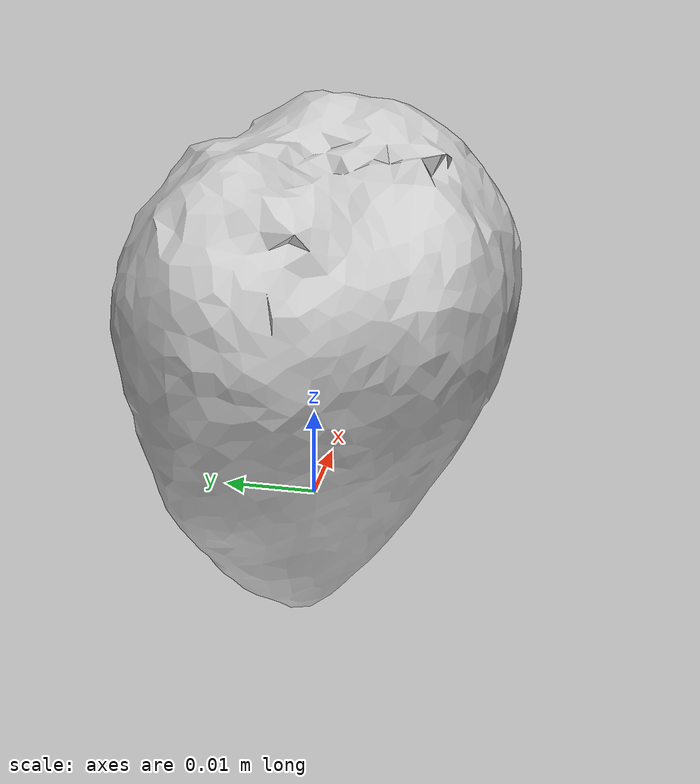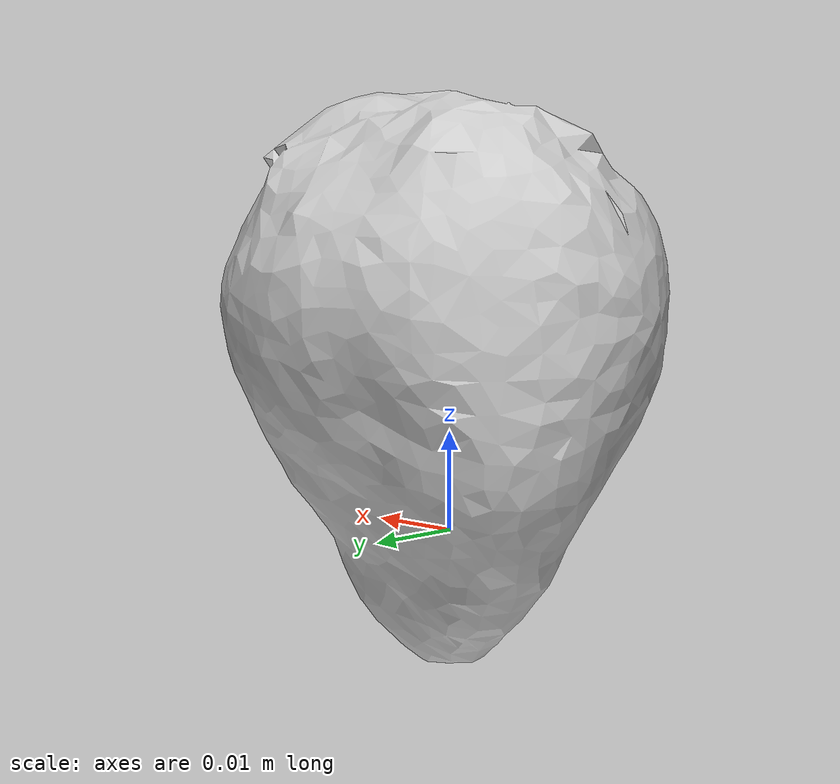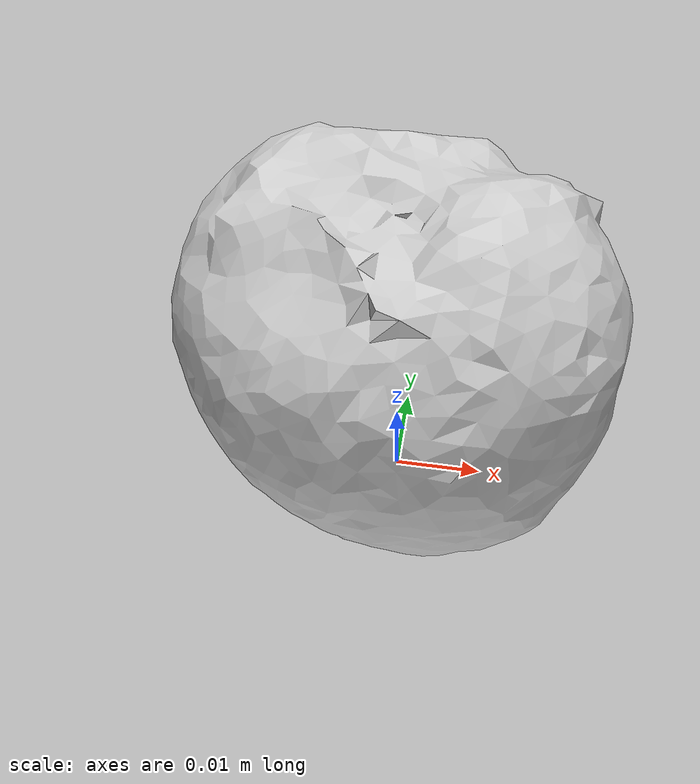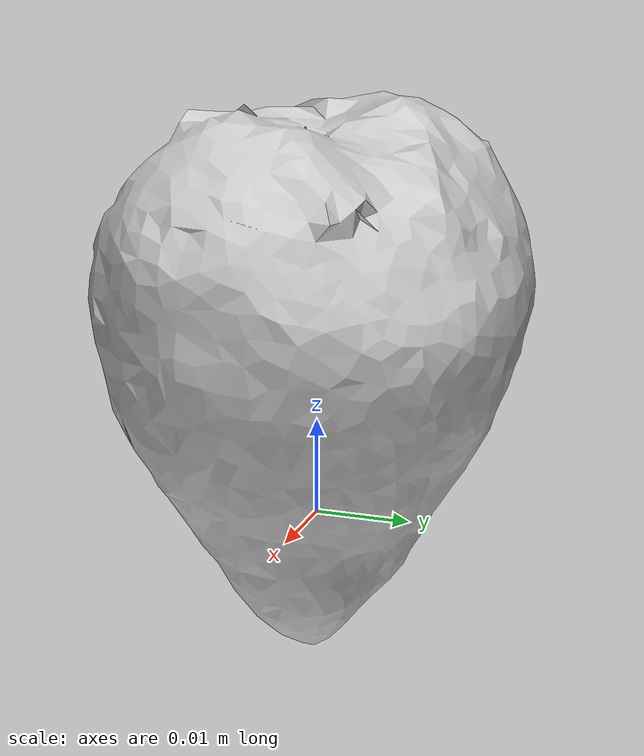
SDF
<?xml version='1.0'?>
<sdf version="1.5">
  <model name="strawberry_02">
    <pose>0 0 0.02 3.14 0 0</pose>
    <static>false</static>
    <link name="link">
      <inertial>
        <mass>0.01</mass>
        <inertia>
          <ixx>0.000001397</ixx>
          <iyy>0.000001397</iyy>
          <izz>0.000000919</izz>
        </inertia>
      </inertial>
      <collision name="collision">
        <geometry>
          <mesh>
            <uri>model://strawberry_02/collision/02.dae</uri>
          </mesh>
        </geometry>
      </collision>
      <visual name="visual">
        <geometry>
          <mesh>
            <uri>model://strawberry_02/visual/02.dae</uri>
          </mesh>
        </geometry>
        <material>
          <script>
            <uri>model://strawberry_02/materials/scripts</uri>
            <uri>model://strawberry_02/materials/textures</uri>
            <name>strawberry_02</name>
          </script>
        </material>
      </visual>
    </link>
  </model>
</sdf>
